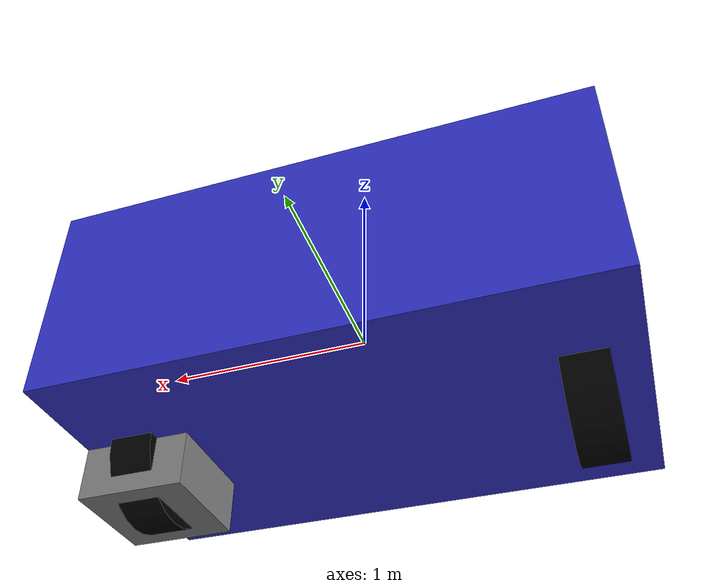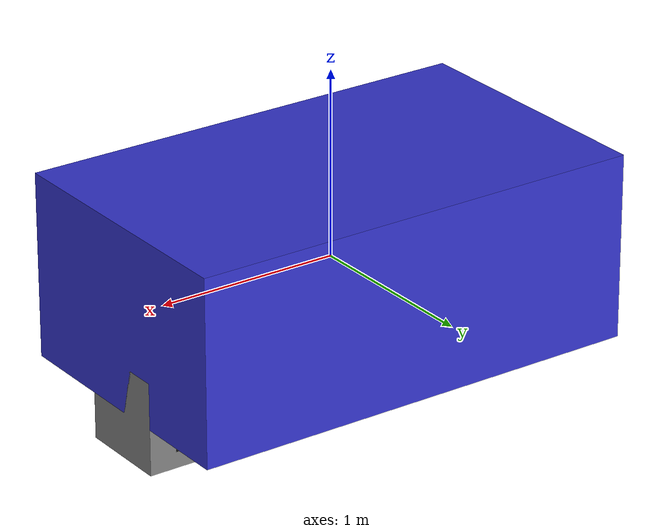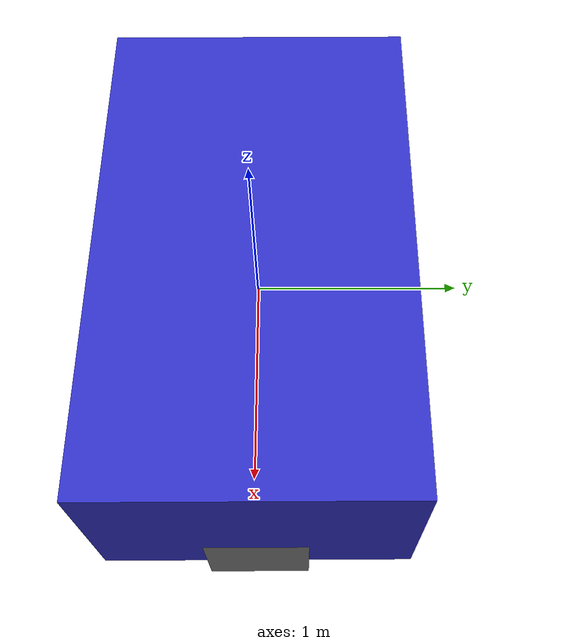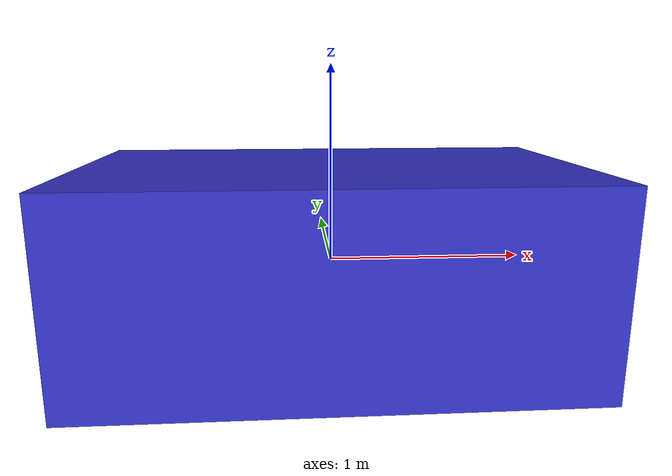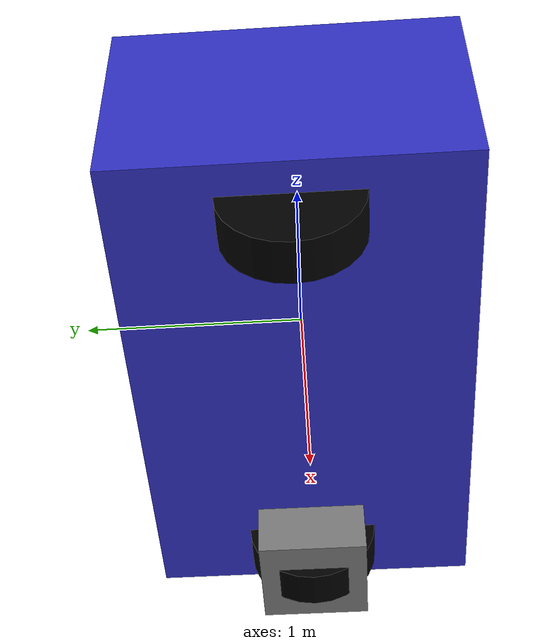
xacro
<?xml version="1.0"?>
<robot xmlns:xacro="http://wiki.ros.org/xacro" name="bicycle_car">

  <!-- 基础链接 -->
  <link name="base_link">
    <inertial>
      <mass value="500"/>
      <inertia ixx="100" ixy="0" ixz="0" iyy="200" iyz="0" izz="300"/>
    </inertial>
    <collision>
      <origin xyz="0 0 0" rpy="0 0 0"/>
      <geometry>
        <box size="2.5 1.5 1.0"/>
      </geometry>
    </collision>
    <visual>
      <origin xyz="0 0 0" rpy="0 0 0"/>
      <geometry>
        <box size="2.5 1.5 1.0"/>
      </geometry>
      <material name="blue">
        <color rgba="0.2 0.2 0.8 1.0"/>
      </material>
    </visual>
  </link>

  <!-- 后轮链接 -->
  <link name="rear_wheel_link">
    <inertial>
      <mass value="10.0"/>
      <inertia ixx="0.5" ixy="0" ixz="0" iyy="0.5" iyz="0" izz="0.5"/>
    </inertial>
    <collision>
      <origin xyz="0 0 0" rpy="0 0 0"/>
      <geometry>
        <cylinder radius="0.3" length="0.2"/>
      </geometry>
    </collision>
    <visual>
      <origin xyz="0 0 0" rpy="0 0 0"/>
      <geometry>
        <cylinder radius="0.3" length="0.2"/>
      </geometry>
      <material name="black">
        <color rgba="0.0 0.0 0.0 1.0"/>
      </material>
    </visual>
  </link>

  <!-- 后轮驱动关节（连续旋转） -->
  <joint name="rear_wheel_joint" type="continuous">
    <parent link="base_link"/>
    <child link="rear_wheel_link"/>
    <origin xyz="-1.0 0 -0.5" rpy="0 1.5708 0"/> <!-- 后轮位置（相对于base_link） -->
    <axis xyz="0 1 0"/> <!-- 旋转轴（沿y轴） -->
    <limit effort="1000" velocity="100"/>
    <dynamics damping="1.0" friction="0.1"/>
  </joint>

  <!-- 前轮转向关节链接（转向部分） -->
  <link name="front_steering_link">
    <inertial>
      <mass value="5.0"/>
      <inertia ixx="0.3" ixy="0" ixz="0" iyy="0.3" iyz="0" izz="0.3"/>
    </inertial>
    <collision>
      <origin xyz="0 0 0" rpy="0 0 0"/>
      <geometry>
        <box size="0.5 0.5 0.5"/>
      </geometry>
    </collision>
    <visual>
      <origin xyz="0 0 0" rpy="0 0 0"/>
      <geometry>
        <box size="0.5 0.5 0.5"/>
      </geometry>
      <material name="gray">
        <color rgba="0.5 0.5 0.5 1.0"/>
      </material>
    </visual>
  </link>

  <!-- 前轮转向关节（旋转轴垂直向上） -->
  <joint name="front_steering_joint" type="revolute">
    <parent link="base_link"/>
    <child link="front_steering_link"/>
    <origin xyz="1.0 0 -0.5" rpy="0 0 0"/> <!-- 前轮转向部分位置 -->
    <axis xyz="0 0 1"/> <!-- 转向旋转轴（沿z轴） -->
    <limit effort="500" velocity="10" lower="-0.523" upper="0.523"/> <!-- ±30度（弧度） -->
    <dynamics damping="10.0" friction="1.0"/>
  </joint>

  <!-- 前轮链接 -->
  <link name="front_wheel_link">
    <inertial>
      <mass value="8.0"/>
      <inertia ixx="0.4" ixy="0" ixz="0" iyy="0.4" iyz="0" izz="0.4"/>
    </inertial>
    <collision>
      <origin xyz="0 0 0" rpy="0 0 0"/>
      <geometry>
        <cylinder radius="0.3" length="0.2"/>
      </geometry>
    </collision>
    <visual>
      <origin xyz="0 0 0" rpy="0 0 0"/>
      <geometry>
        <cylinder radius="0.3" length="0.2"/>
      </geometry>
      <material name="black">
        <color rgba="0.0 0.0 0.0 1.0"/>
      </material>
    </visual>
  </link>

  <!-- 前轮旋转关节（随转向联动） -->
  <joint name="front_wheel_joint" type="continuous">
    <parent link="front_steering_link"/>
    <child link="front_wheel_link"/>
    <origin xyz="0 0 0" rpy="0 1.5708 0"/>
    <axis xyz="0 1 0"/> <!-- 滚动轴（沿y轴） -->
    <limit effort="1000" velocity="100"/>
    <dynamics damping="1.0" friction="0.1"/>
  </joint>

  <!-- Gazebo控制器配置 -->
  <gazebo>
    <plugin name="bicycle_ros_control" filename="libgazebo_ros_control.so">
      <robotNamespace>/car</robotNamespace>
      <controlPeriod>0.01</controlPeriod>
      <robotSimType>gazebo_ros_control/DefaultRobotHWSim</robotSimType>
    </plugin>
  </gazebo>

</robot>
